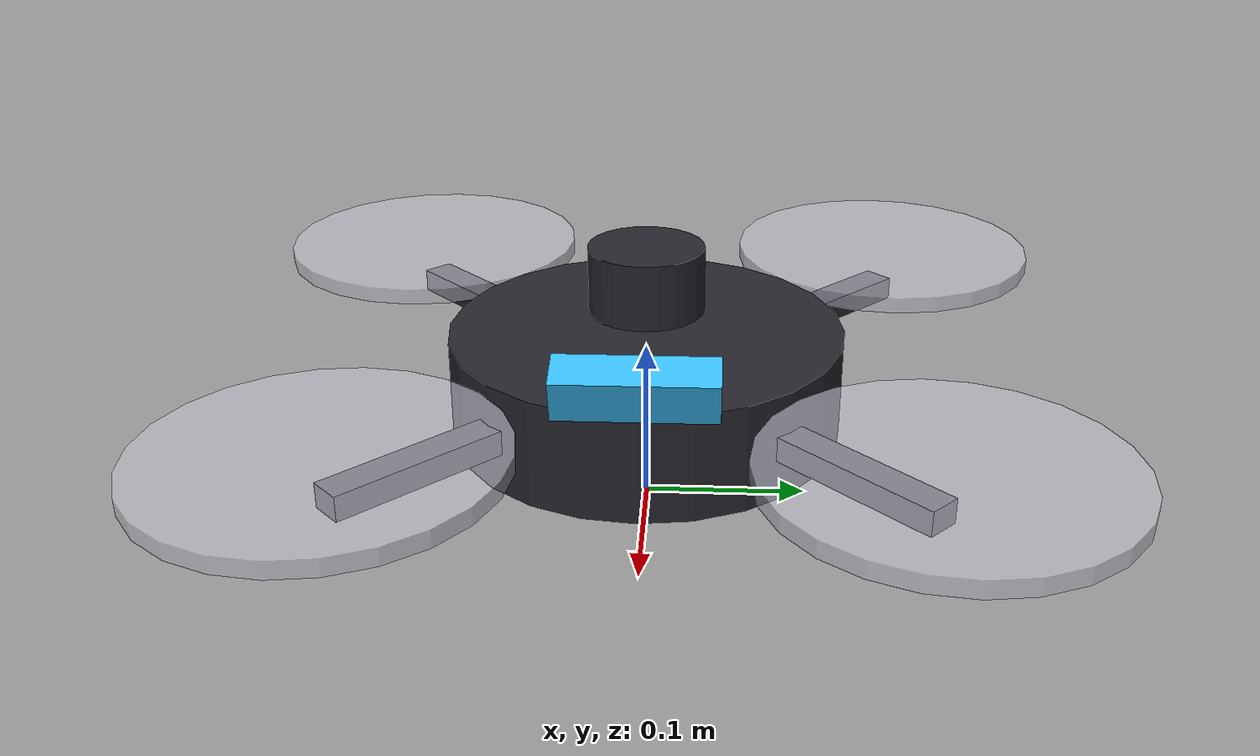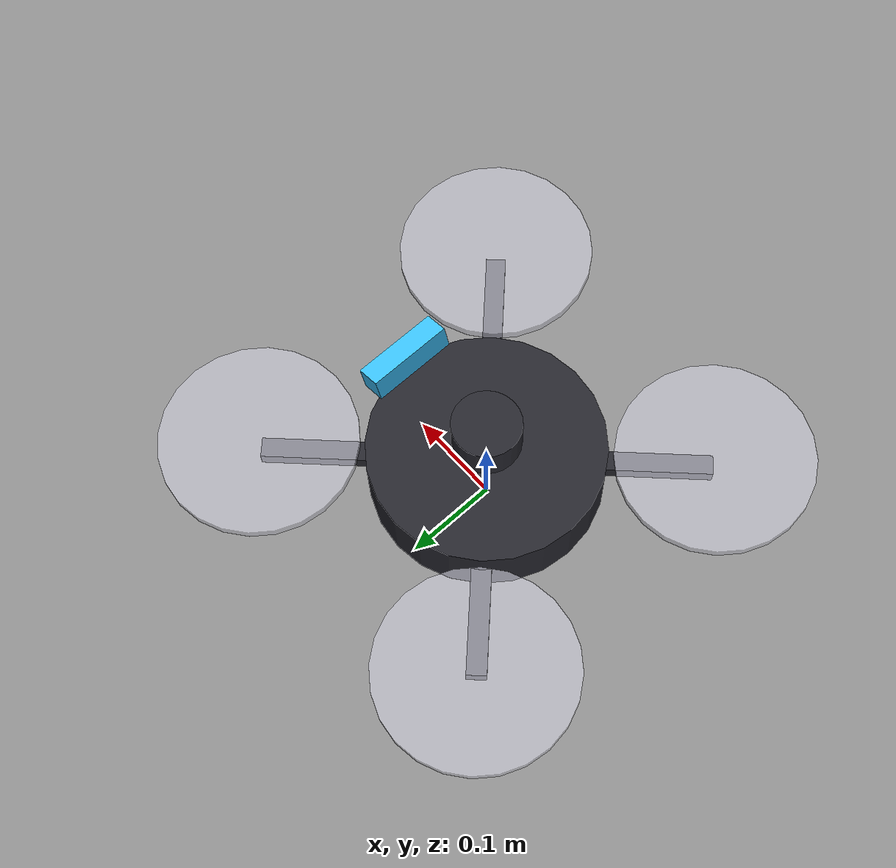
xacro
<?xml version="1.0"?>
<!--
  drone.urdf.xacro
  ================
  Parametric URDF Model for Autonomous Quadrotor UAV.
  Author: Member 3 (ROS 2 & System Integration Engineer)
-->
<robot name="autonomous_uav" xmlns:xacro="http://www.ros.org/wiki/xacro">

  <!-- Physical Properties -->
  <xacro:property name="drone_mass" value="1.450" />
  <xacro:property name="arm_length" value="0.225" />
  <xacro:property name="body_radius" value="0.120" />
  <xacro:property name="body_height" value="0.065" />
  <xacro:property name="rotor_radius" value="0.100" />
  <xacro:property name="rotor_height" value="0.010" />

  <!-- Materials -->
  <material name="carbon_fiber">
    <color rgba="0.15 0.15 0.18 1.0" />
  </material>
  <material name="cyan_accent">
    <color rgba="0.22 0.74 0.97 1.0" />
  </material>
  <material name="rotor_translucent">
    <color rgba="0.8 0.8 0.85 0.6" />
  </material>
  <material name="lens_glass">
    <color rgba="0.05 0.05 0.1 0.9" />
  </material>

  <!-- Base Footprint (Ground Projection) -->
  <link name="base_footprint"/>

  <joint name="base_footprint_joint" type="fixed">
    <parent link="base_footprint"/>
    <child link="base_link"/>
    <origin xyz="0 0 0.08" rpy="0 0 0"/>
  </joint>

  <!-- Base Link (Center of Mass) -->
  <link name="base_link">
    <inertial>
      <mass value="${drone_mass}"/>
      <origin xyz="0 0 0" rpy="0 0 0"/>
      <!-- Realistic 450mm Quadrotor Inertia Tensor (kg*m^2) -->
      <inertia ixx="0.0142" ixy="0.0" ixz="0.0"
               iyy="0.0142" iyz="0.0"
               izz="0.0245"/>
    </inertial>

    <!-- Central Fuselage Visual -->
    <visual>
      <origin xyz="0 0 0" rpy="0 0 0"/>
      <geometry>
        <cylinder radius="${body_radius}" length="${body_height}"/>
      </geometry>
      <material name="carbon_fiber"/>
    </visual>

    <!-- Collision Geometry -->
    <collision>
      <origin xyz="0 0 0" rpy="0 0 0"/>
      <geometry>
        <cylinder radius="${body_radius * 1.1}" length="${body_height * 1.2}"/>
      </geometry>
    </collision>
  </link>

  <!-- Macro for Rotor Arms and Propellers -->
  <xacro:macro name="rotor_arm" params="prefix angle dir_sign">
    <!-- Arm Link -->
    <link name="arm_${prefix}">
      <visual>
        <origin xyz="${arm_length/2} 0 0" rpy="0 0 0"/>
        <geometry>
          <box size="${arm_length} 0.02 0.015"/>
        </geometry>
        <material name="carbon_fiber"/>
      </visual>
    </link>

    <joint name="arm_${prefix}_joint" type="fixed">
      <parent link="base_link"/>
      <child link="arm_${prefix}"/>
      <origin xyz="0 0 0" rpy="0 0 ${angle}"/>
    </joint>

    <!-- Motor & Rotor -->
    <link name="rotor_${prefix}">
      <visual>
        <origin xyz="0 0 0.015" rpy="0 0 0"/>
        <geometry>
          <cylinder radius="${rotor_radius}" length="${rotor_height}"/>
        </geometry>
        <material name="rotor_translucent"/>
      </visual>
      <inertial>
        <mass value="0.015"/>
        <inertia ixx="0.00002" ixy="0" ixz="0" iyy="0.00002" iyz="0" izz="0.00004"/>
      </inertial>
    </link>

    <joint name="rotor_${prefix}_joint" type="continuous">
      <parent link="arm_${prefix}"/>
      <child link="rotor_${prefix}"/>
      <origin xyz="${arm_length} 0 0.01" rpy="0 0 0"/>
      <axis xyz="0 0 ${dir_sign}"/>
    </joint>
  </xacro:macro>

  <!-- 4 X-Configuration Arms (45, 135, 225, 315 deg) -->
  <xacro:rotor_arm prefix="front_right" angle="${pi/4}" dir_sign="-1"/>
  <xacro:rotor_arm prefix="front_left"  angle="${3*pi/4}" dir_sign="1"/>
  <xacro:rotor_arm prefix="back_left"   angle="${5*pi/4}" dir_sign="-1"/>
  <xacro:rotor_arm prefix="back_right"  angle="${7*pi/4}" dir_sign="1"/>

  <!-- RGB-D Visual SLAM & AI Camera (Intel RealSense D435i / OAK-D) -->
  <link name="camera_link">
    <visual>
      <origin xyz="0 0 0" rpy="0 0 0"/>
      <geometry>
        <box size="0.025 0.090 0.025"/>
      </geometry>
      <material name="cyan_accent"/>
    </visual>
  </link>

  <joint name="camera_joint" type="fixed">
    <parent link="base_link"/>
    <child link="camera_link"/>
    <!-- Mounted 12cm Forward, 5cm Up, 15 deg downward pitch tilt -->
    <origin xyz="0.12 0.0 0.05" rpy="0 0.2618 0"/>
  </joint>

  <!-- Camera Optical Frame (X-Right, Y-Down, Z-Forward) -->
  <link name="camera_optical_frame"/>
  <joint name="camera_optical_joint" type="fixed">
    <parent link="camera_link"/>
    <child link="camera_optical_frame"/>
    <origin xyz="0 0 0" rpy="${-pi/2} 0 ${-pi/2}"/>
  </joint>

  <!-- IMU Sensor Link -->
  <link name="imu_link"/>
  <joint name="imu_joint" type="fixed">
    <parent link="base_link"/>
    <child link="imu_link"/>
    <origin xyz="0 0 0.02" rpy="0 0 0"/>
  </joint>

  <!-- 2D/3D Lidar Laser Scanner Link -->
  <link name="lidar_link">
    <visual>
      <origin xyz="0 0 0" rpy="0 0 0"/>
      <geometry>
        <cylinder radius="0.035" length="0.04"/>
      </geometry>
      <material name="carbon_fiber"/>
    </visual>
  </link>

  <joint name="lidar_joint" type="fixed">
    <parent link="base_link"/>
    <child link="lidar_link"/>
    <origin xyz="0 0 0.065" rpy="0 0 0"/>
  </joint>

</robot>
